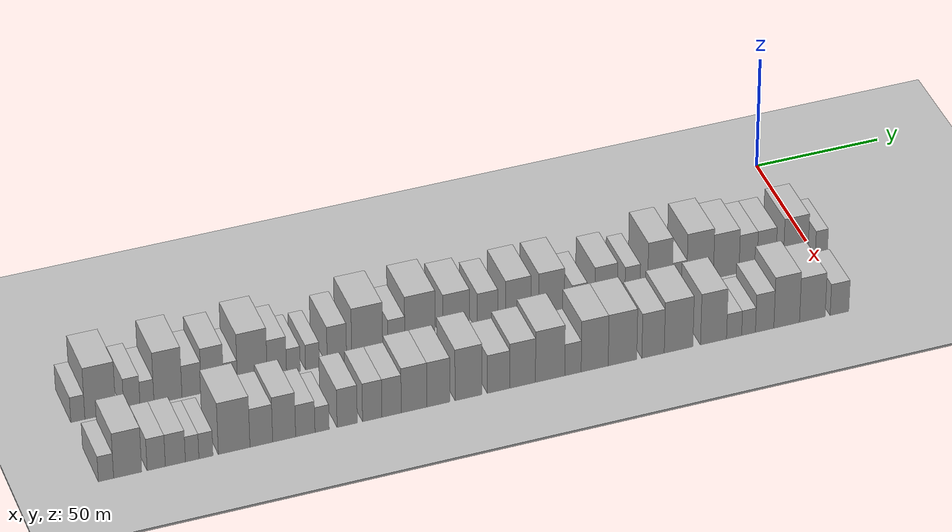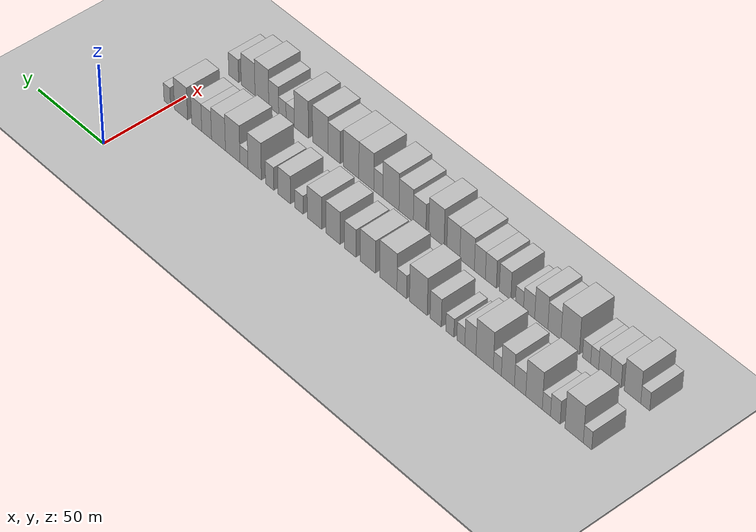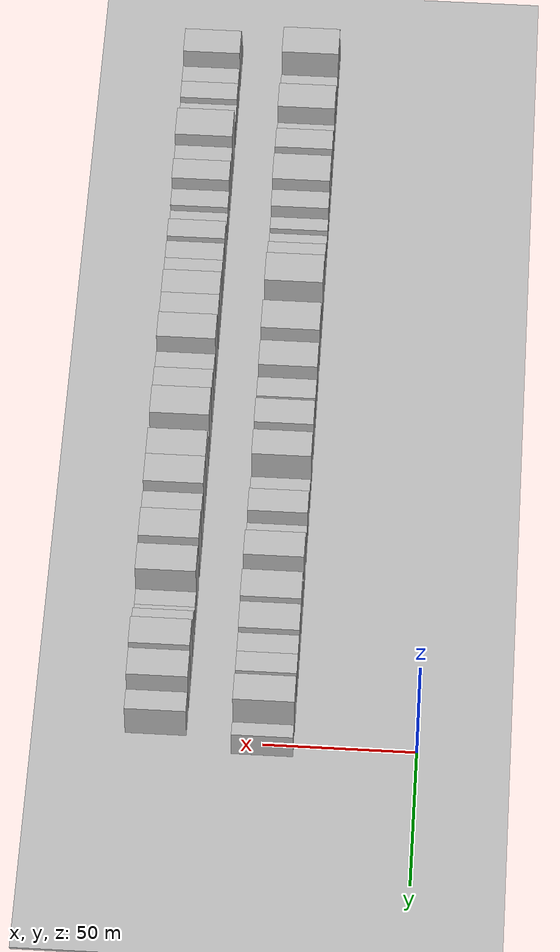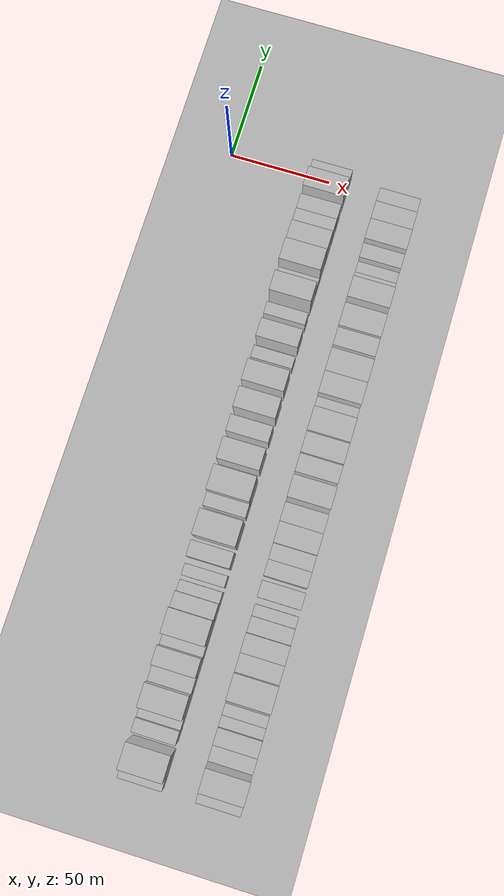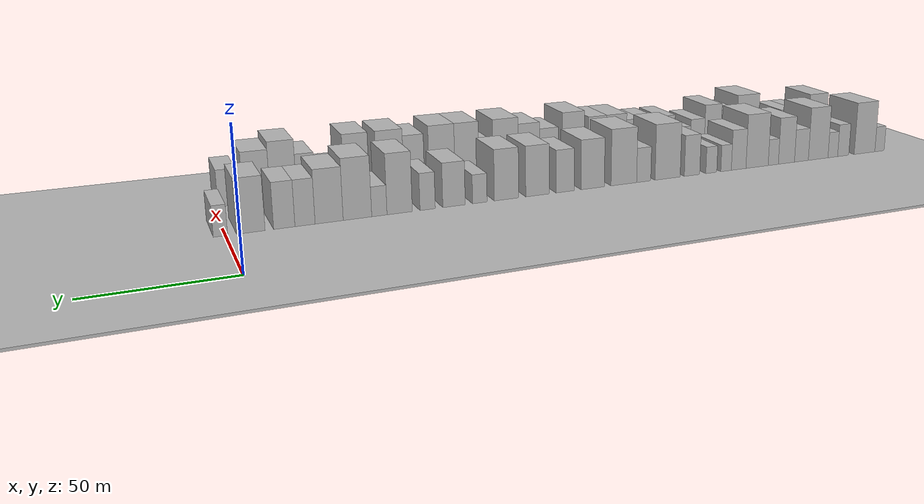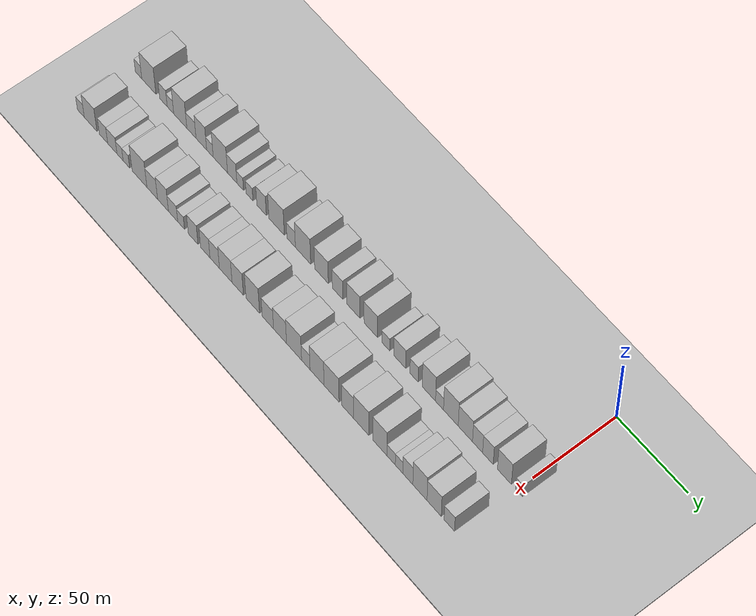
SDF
<sdf version="1.6">
 <world name="default">
  <include><name>ground_plane_1</name><uri>model://HANNAS_ground_plane</uri></include>
  <include>
   <name>ground_plane_2</name>
   <uri>model://HANNAS_ground_plane</uri>
   <pose>100 0 0  0 0 0</pose>
  </include>
  <model name="building_1">
   <static>1</static>
   <pose>50.0000 -287.3659 0 0.000000 0.000000 0.000000</pose>
   <link name="link">
    <pose>0 0 6.00 0 0 0</pose>
    <collision name="collision"><geometry><box><size>20.0000 5.2683 12.0000</size></box></geometry></collision>
    <visual name="visual">
     <cast_shadows>0</cast_shadows>
     <geometry><box><size>20.0000 5.2683 12.0000</size></box></geometry>
     <material>
      <script>
       <uri>model://HANNAS_wall/materials/scripts</uri>
       <uri>model://HANNAS_wall/materials/textures</uri>
       <name>vrc/HANNAS_wall</name>
      </script>
     </material>
    </visual>
   </link>
  </model>
  <model name="building_2">
   <static>1</static>
   <pose>50.0000 -278.9402 0 0.000000 0.000000 0.000000</pose>
   <link name="link">
    <pose>0 0 12.00 0 0 0</pose>
    <collision name="collision"><geometry><box><size>20.0000 11.5830 24.0000</size></box></geometry></collision>
    <visual name="visual">
     <cast_shadows>0</cast_shadows>
     <geometry><box><size>20.0000 11.5830 24.0000</size></box></geometry>
     <material>
      <script>
       <uri>model://HANNAS_wall/materials/scripts</uri>
       <uri>model://HANNAS_wall/materials/textures</uri>
       <name>vrc/HANNAS_wall</name>
      </script>
     </material>
    </visual>
   </link>
  </model>
  <model name="building_3">
   <static>1</static>
   <pose>50.0000 -267.0812 0 0.000000 0.000000 0.000000</pose>
   <link name="link">
    <pose>0 0 7.50 0 0 0</pose>
    <collision name="collision"><geometry><box><size>20.0000 6.1351 15.0000</size></box></geometry></collision>
    <visual name="visual">
     <cast_shadows>0</cast_shadows>
     <geometry><box><size>20.0000 6.1351 15.0000</size></box></geometry>
     <material>
      <script>
       <uri>model://HANNAS_wall/materials/scripts</uri>
       <uri>model://HANNAS_wall/materials/textures</uri>
       <name>vrc/HANNAS_wall</name>
      </script>
     </material>
    </visual>
   </link>
  </model>
  <model name="building_4">
   <static>1</static>
   <pose>50.0000 -261.3872 0 0.000000 0.000000 0.000000</pose>
   <link name="link">
    <pose>0 0 6.00 0 0 0</pose>
    <collision name="collision"><geometry><box><size>20.0000 5.2528 12.0000</size></box></geometry></collision>
    <visual name="visual">
     <cast_shadows>0</cast_shadows>
     <geometry><box><size>20.0000 5.2528 12.0000</size></box></geometry>
     <material>
      <script>
       <uri>model://HANNAS_wall/materials/scripts</uri>
       <uri>model://HANNAS_wall/materials/textures</uri>
       <name>vrc/HANNAS_wall</name>
      </script>
     </material>
    </visual>
   </link>
  </model>
  <model name="building_5">
   <static>1</static>
   <pose>50.0000 -253.4745 0 0.000000 0.000000 0.000000</pose>
   <link name="link">
    <pose>0 0 12.00 0 0 0</pose>
    <collision name="collision"><geometry><box><size>20.0000 10.5725 24.0000</size></box></geometry></collision>
    <visual name="visual">
     <cast_shadows>0</cast_shadows>
     <geometry><box><size>20.0000 10.5725 24.0000</size></box></geometry>
     <material>
      <script>
       <uri>model://HANNAS_wall/materials/scripts</uri>
       <uri>model://HANNAS_wall/materials/textures</uri>
       <name>vrc/HANNAS_wall</name>
      </script>
     </material>
    </visual>
   </link>
  </model>
  <model name="building_6">
   <static>1</static>
   <pose>50.0000 -244.5200 0 0.000000 0.000000 0.000000</pose>
   <link name="link">
    <pose>0 0 7.50 0 0 0</pose>
    <collision name="collision"><geometry><box><size>20.0000 7.3365 15.0000</size></box></geometry></collision>
    <visual name="visual">
     <cast_shadows>0</cast_shadows>
     <geometry><box><size>20.0000 7.3365 15.0000</size></box></geometry>
     <material>
      <script>
       <uri>model://HANNAS_wall/materials/scripts</uri>
       <uri>model://HANNAS_wall/materials/textures</uri>
       <name>vrc/HANNAS_wall</name>
      </script>
     </material>
    </visual>
   </link>
  </model>
  <model name="building_7">
   <static>1</static>
   <pose>50.0000 -236.6234 0 0.000000 0.000000 0.000000</pose>
   <link name="link">
    <pose>0 0 10.50 0 0 0</pose>
    <collision name="collision"><geometry><box><size>20.0000 8.4568 21.0000</size></box></geometry></collision>
    <visual name="visual">
     <cast_shadows>0</cast_shadows>
     <geometry><box><size>20.0000 8.4568 21.0000</size></box></geometry>
     <material>
      <script>
       <uri>model://HANNAS_wall/materials/scripts</uri>
       <uri>model://HANNAS_wall/materials/textures</uri>
       <name>vrc/HANNAS_wall</name>
      </script>
     </material>
    </visual>
   </link>
  </model>
  <model name="building_8">
   <static>1</static>
   <pose>50.0000 -229.7621 0 0.000000 0.000000 0.000000</pose>
   <link name="link">
    <pose>0 0 6.00 0 0 0</pose>
    <collision name="collision"><geometry><box><size>20.0000 5.2659 12.0000</size></box></geometry></collision>
    <visual name="visual">
     <cast_shadows>0</cast_shadows>
     <geometry><box><size>20.0000 5.2659 12.0000</size></box></geometry>
     <material>
      <script>
       <uri>model://HANNAS_wall/materials/scripts</uri>
       <uri>model://HANNAS_wall/materials/textures</uri>
       <name>vrc/HANNAS_wall</name>
      </script>
     </material>
    </visual>
   </link>
  </model>
  <model name="building_9">
   <static>1</static>
   <pose>50.0000 -221.4474 0 0.000000 0.000000 0.000000</pose>
   <link name="link">
    <pose>0 0 12.00 0 0 0</pose>
    <collision name="collision"><geometry><box><size>20.0000 11.3634 24.0000</size></box></geometry></collision>
    <visual name="visual">
     <cast_shadows>0</cast_shadows>
     <geometry><box><size>20.0000 11.3634 24.0000</size></box></geometry>
     <material>
      <script>
       <uri>model://HANNAS_wall/materials/scripts</uri>
       <uri>model://HANNAS_wall/materials/textures</uri>
       <name>vrc/HANNAS_wall</name>
      </script>
     </material>
    </visual>
   </link>
  </model>
  <model name="building_10">
   <static>1</static>
   <pose>50.0000 -212.0919 0 0.000000 0.000000 0.000000</pose>
   <link name="link">
    <pose>0 0 9.00 0 0 0</pose>
    <collision name="collision"><geometry><box><size>20.0000 7.3475 18.0000</size></box></geometry></collision>
    <visual name="visual">
     <cast_shadows>0</cast_shadows>
     <geometry><box><size>20.0000 7.3475 18.0000</size></box></geometry>
     <material>
      <script>
       <uri>model://HANNAS_wall/materials/scripts</uri>
       <uri>model://HANNAS_wall/materials/textures</uri>
       <name>vrc/HANNAS_wall</name>
      </script>
     </material>
    </visual>
   </link>
  </model>
  <model name="building_11">
   <static>1</static>
   <pose>50.0000 -205.8029 0 0.000000 0.000000 0.000000</pose>
   <link name="link">
    <pose>0 0 6.00 0 0 0</pose>
    <collision name="collision"><geometry><box><size>20.0000 5.2305 12.0000</size></box></geometry></collision>
    <visual name="visual">
     <cast_shadows>0</cast_shadows>
     <geometry><box><size>20.0000 5.2305 12.0000</size></box></geometry>
     <material>
      <script>
       <uri>model://HANNAS_wall/materials/scripts</uri>
       <uri>model://HANNAS_wall/materials/textures</uri>
       <name>vrc/HANNAS_wall</name>
      </script>
     </material>
    </visual>
   </link>
  </model>
  <model name="building_12">
   <static>1</static>
   <pose>50.0000 -198.5033 0 0.000000 0.000000 0.000000</pose>
   <link name="link">
    <pose>0 0 6.00 0 0 0</pose>
    <collision name="collision"><geometry><box><size>20.0000 5.3688 12.0000</size></box></geometry></collision>
    <visual name="visual">
     <cast_shadows>0</cast_shadows>
     <geometry><box><size>20.0000 5.3688 12.0000</size></box></geometry>
     <material>
      <script>
       <uri>model://HANNAS_wall/materials/scripts</uri>
       <uri>model://HANNAS_wall/materials/textures</uri>
       <name>vrc/HANNAS_wall</name>
      </script>
     </material>
    </visual>
   </link>
  </model>
  <model name="building_13">
   <static>1</static>
   <pose>50.0000 -189.1002 0 0.000000 0.000000 0.000000</pose>
   <link name="link">
    <pose>0 0 9.00 0 0 0</pose>
    <collision name="collision"><geometry><box><size>20.0000 7.4374 18.0000</size></box></geometry></collision>
    <visual name="visual">
     <cast_shadows>0</cast_shadows>
     <geometry><box><size>20.0000 7.4374 18.0000</size></box></geometry>
     <material>
      <script>
       <uri>model://HANNAS_wall/materials/scripts</uri>
       <uri>model://HANNAS_wall/materials/textures</uri>
       <name>vrc/HANNAS_wall</name>
      </script>
     </material>
    </visual>
   </link>
  </model>
  <model name="building_14">
   <static>1</static>
   <pose>50.0000 -177.4174 0 0.000000 0.000000 0.000000</pose>
   <link name="link">
    <pose>0 0 12.00 0 0 0</pose>
    <collision name="collision"><geometry><box><size>20.0000 11.9281 24.0000</size></box></geometry></collision>
    <visual name="visual">
     <cast_shadows>0</cast_shadows>
     <geometry><box><size>20.0000 11.9281 24.0000</size></box></geometry>
     <material>
      <script>
       <uri>model://HANNAS_wall/materials/scripts</uri>
       <uri>model://HANNAS_wall/materials/textures</uri>
       <name>vrc/HANNAS_wall</name>
      </script>
     </material>
    </visual>
   </link>
  </model>
  <model name="building_15">
   <static>1</static>
   <pose>50.0000 -166.1783 0 0.000000 0.000000 0.000000</pose>
   <link name="link">
    <pose>0 0 7.50 0 0 0</pose>
    <collision name="collision"><geometry><box><size>20.0000 6.5502 15.0000</size></box></geometry></collision>
    <visual name="visual">
     <cast_shadows>0</cast_shadows>
     <geometry><box><size>20.0000 6.5502 15.0000</size></box></geometry>
     <material>
      <script>
       <uri>model://HANNAS_wall/materials/scripts</uri>
       <uri>model://HANNAS_wall/materials/textures</uri>
       <name>vrc/HANNAS_wall</name>
      </script>
     </material>
    </visual>
   </link>
  </model>
  <model name="building_16">
   <static>1</static>
   <pose>50.0000 -157.0334 0 0.000000 0.000000 0.000000</pose>
   <link name="link">
    <pose>0 0 12.00 0 0 0</pose>
    <collision name="collision"><geometry><box><size>20.0000 11.7396 24.0000</size></box></geometry></collision>
    <visual name="visual">
     <cast_shadows>0</cast_shadows>
     <geometry><box><size>20.0000 11.7396 24.0000</size></box></geometry>
     <material>
      <script>
       <uri>model://HANNAS_wall/materials/scripts</uri>
       <uri>model://HANNAS_wall/materials/textures</uri>
       <name>vrc/HANNAS_wall</name>
      </script>
     </material>
    </visual>
   </link>
  </model>
  <model name="building_17">
   <static>1</static>
   <pose>50.0000 -142.9570 0 0.000000 0.000000 0.000000</pose>
   <link name="link">
    <pose>0 0 10.50 0 0 0</pose>
    <collision name="collision"><geometry><box><size>20.0000 10.4133 21.0000</size></box></geometry></collision>
    <visual name="visual">
     <cast_shadows>0</cast_shadows>
     <geometry><box><size>20.0000 10.4133 21.0000</size></box></geometry>
     <material>
      <script>
       <uri>model://HANNAS_wall/materials/scripts</uri>
       <uri>model://HANNAS_wall/materials/textures</uri>
       <name>vrc/HANNAS_wall</name>
      </script>
     </material>
    </visual>
   </link>
  </model>
  <model name="building_18">
   <static>1</static>
   <pose>50.0000 -130.7641 0 0.000000 0.000000 0.000000</pose>
   <link name="link">
    <pose>0 0 9.00 0 0 0</pose>
    <collision name="collision"><geometry><box><size>20.0000 7.9725 18.0000</size></box></geometry></collision>
    <visual name="visual">
     <cast_shadows>0</cast_shadows>
     <geometry><box><size>20.0000 7.9725 18.0000</size></box></geometry>
     <material>
      <script>
       <uri>model://HANNAS_wall/materials/scripts</uri>
       <uri>model://HANNAS_wall/materials/textures</uri>
       <name>vrc/HANNAS_wall</name>
      </script>
     </material>
    </visual>
   </link>
  </model>
  <model name="building_19">
   <static>1</static>
   <pose>50.0000 -118.8016 0 0.000000 0.000000 0.000000</pose>
   <link name="link">
    <pose>0 0 10.50 0 0 0</pose>
    <collision name="collision"><geometry><box><size>20.0000 9.9525 21.0000</size></box></geometry></collision>
    <visual name="visual">
     <cast_shadows>0</cast_shadows>
     <geometry><box><size>20.0000 9.9525 21.0000</size></box></geometry>
     <material>
      <script>
       <uri>model://HANNAS_wall/materials/scripts</uri>
       <uri>model://HANNAS_wall/materials/textures</uri>
       <name>vrc/HANNAS_wall</name>
      </script>
     </material>
    </visual>
   </link>
  </model>
  <model name="building_20">
   <static>1</static>
   <pose>50.0000 -105.7524 0 0.000000 0.000000 0.000000</pose>
   <link name="link">
    <pose>0 0 10.50 0 0 0</pose>
    <collision name="collision"><geometry><box><size>20.0000 10.1458 21.0000</size></box></geometry></collision>
    <visual name="visual">
     <cast_shadows>0</cast_shadows>
     <geometry><box><size>20.0000 10.1458 21.0000</size></box></geometry>
     <material>
      <script>
       <uri>model://HANNAS_wall/materials/scripts</uri>
       <uri>model://HANNAS_wall/materials/textures</uri>
       <name>vrc/HANNAS_wall</name>
      </script>
     </material>
    </visual>
   </link>
  </model>
  <model name="building_21">
   <static>1</static>
   <pose>50.0000 -94.7142 0 0.000000 0.000000 0.000000</pose>
   <link name="link">
    <pose>0 0 6.00 0 0 0</pose>
    <collision name="collision"><geometry><box><size>20.0000 5.9307 12.0000</size></box></geometry></collision>
    <visual name="visual">
     <cast_shadows>0</cast_shadows>
     <geometry><box><size>20.0000 5.9307 12.0000</size></box></geometry>
     <material>
      <script>
       <uri>model://HANNAS_wall/materials/scripts</uri>
       <uri>model://HANNAS_wall/materials/textures</uri>
       <name>vrc/HANNAS_wall</name>
      </script>
     </material>
    </visual>
   </link>
  </model>
  <model name="building_22">
   <static>1</static>
   <pose>50.0000 -84.2666 0 0.000000 0.000000 0.000000</pose>
   <link name="link">
    <pose>0 0 9.00 0 0 0</pose>
    <collision name="collision"><geometry><box><size>20.0000 8.9644 18.0000</size></box></geometry></collision>
    <visual name="visual">
     <cast_shadows>0</cast_shadows>
     <geometry><box><size>20.0000 8.9644 18.0000</size></box></geometry>
     <material>
      <script>
       <uri>model://HANNAS_wall/materials/scripts</uri>
       <uri>model://HANNAS_wall/materials/textures</uri>
       <name>vrc/HANNAS_wall</name>
      </script>
     </material>
    </visual>
   </link>
  </model>
  <model name="building_23">
   <static>1</static>
   <pose>50.0000 -73.7801 0 0.000000 0.000000 0.000000</pose>
   <link name="link">
    <pose>0 0 7.50 0 0 0</pose>
    <collision name="collision"><geometry><box><size>20.0000 6.0086 15.0000</size></box></geometry></collision>
    <visual name="visual">
     <cast_shadows>0</cast_shadows>
     <geometry><box><size>20.0000 6.0086 15.0000</size></box></geometry>
     <material>
      <script>
       <uri>model://HANNAS_wall/materials/scripts</uri>
       <uri>model://HANNAS_wall/materials/textures</uri>
       <name>vrc/HANNAS_wall</name>
      </script>
     </material>
    </visual>
   </link>
  </model>
  <model name="building_24">
   <static>1</static>
   <pose>50.0000 -62.9027 0 0.000000 0.000000 0.000000</pose>
   <link name="link">
    <pose>0 0 12.00 0 0 0</pose>
    <collision name="collision"><geometry><box><size>20.0000 9.7461 24.0000</size></box></geometry></collision>
    <visual name="visual">
     <cast_shadows>0</cast_shadows>
     <geometry><box><size>20.0000 9.7461 24.0000</size></box></geometry>
     <material>
      <script>
       <uri>model://HANNAS_wall/materials/scripts</uri>
       <uri>model://HANNAS_wall/materials/textures</uri>
       <name>vrc/HANNAS_wall</name>
      </script>
     </material>
    </visual>
   </link>
  </model>
  <model name="building_25">
   <static>1</static>
   <pose>50.0000 -55.1246 0 0.000000 0.000000 0.000000</pose>
   <link name="link">
    <pose>0 0 6.00 0 0 0</pose>
    <collision name="collision"><geometry><box><size>20.0000 5.8101 12.0000</size></box></geometry></collision>
    <visual name="visual">
     <cast_shadows>0</cast_shadows>
     <geometry><box><size>20.0000 5.8101 12.0000</size></box></geometry>
     <material>
      <script>
       <uri>model://HANNAS_wall/materials/scripts</uri>
       <uri>model://HANNAS_wall/materials/textures</uri>
       <name>vrc/HANNAS_wall</name>
      </script>
     </material>
    </visual>
   </link>
  </model>
  <model name="building_26">
   <static>1</static>
   <pose>50.0000 -46.8918 0 0.000000 0.000000 0.000000</pose>
   <link name="link">
    <pose>0 0 12.00 0 0 0</pose>
    <collision name="collision"><geometry><box><size>20.0000 10.6555 24.0000</size></box></geometry></collision>
    <visual name="visual">
     <cast_shadows>0</cast_shadows>
     <geometry><box><size>20.0000 10.6555 24.0000</size></box></geometry>
     <material>
      <script>
       <uri>model://HANNAS_wall/materials/scripts</uri>
       <uri>model://HANNAS_wall/materials/textures</uri>
       <name>vrc/HANNAS_wall</name>
      </script>
     </material>
    </visual>
   </link>
  </model>
  <model name="building_27">
   <static>1</static>
   <pose>50.0000 -36.4208 0 0.000000 0.000000 0.000000</pose>
   <link name="link">
    <pose>0 0 10.50 0 0 0</pose>
    <collision name="collision"><geometry><box><size>20.0000 10.2866 21.0000</size></box></geometry></collision>
    <visual name="visual">
     <cast_shadows>0</cast_shadows>
     <geometry><box><size>20.0000 10.2866 21.0000</size></box></geometry>
     <material>
      <script>
       <uri>model://HANNAS_wall/materials/scripts</uri>
       <uri>model://HANNAS_wall/materials/textures</uri>
       <name>vrc/HANNAS_wall</name>
      </script>
     </material>
    </visual>
   </link>
  </model>
  <model name="building_28">
   <static>1</static>
   <pose>50.0000 -27.6538 0 0.000000 0.000000 0.000000</pose>
   <link name="link">
    <pose>0 0 9.00 0 0 0</pose>
    <collision name="collision"><geometry><box><size>20.0000 7.2474 18.0000</size></box></geometry></collision>
    <visual name="visual">
     <cast_shadows>0</cast_shadows>
     <geometry><box><size>20.0000 7.2474 18.0000</size></box></geometry>
     <material>
      <script>
       <uri>model://HANNAS_wall/materials/scripts</uri>
       <uri>model://HANNAS_wall/materials/textures</uri>
       <name>vrc/HANNAS_wall</name>
      </script>
     </material>
    </visual>
   </link>
  </model>
  <model name="building_29">
   <static>1</static>
   <pose>50.0000 -20.2524 0 0.000000 0.000000 0.000000</pose>
   <link name="link">
    <pose>0 0 9.00 0 0 0</pose>
    <collision name="collision"><geometry><box><size>20.0000 7.5553 18.0000</size></box></geometry></collision>
    <visual name="visual">
     <cast_shadows>0</cast_shadows>
     <geometry><box><size>20.0000 7.5553 18.0000</size></box></geometry>
     <material>
      <script>
       <uri>model://HANNAS_wall/materials/scripts</uri>
       <uri>model://HANNAS_wall/materials/textures</uri>
       <name>vrc/HANNAS_wall</name>
      </script>
     </material>
    </visual>
   </link>
  </model>
  <model name="building_30">
   <static>1</static>
   <pose>50.0000 -8.5156 0 0.000000 0.000000 0.000000</pose>
   <link name="link">
    <pose>0 0 10.50 0 0 0</pose>
    <collision name="collision"><geometry><box><size>20.0000 9.9183 21.0000</size></box></geometry></collision>
    <visual name="visual">
     <cast_shadows>0</cast_shadows>
     <geometry><box><size>20.0000 9.9183 21.0000</size></box></geometry>
     <material>
      <script>
       <uri>model://HANNAS_wall/materials/scripts</uri>
       <uri>model://HANNAS_wall/materials/textures</uri>
       <name>vrc/HANNAS_wall</name>
      </script>
     </material>
    </visual>
   </link>
  </model>
  <model name="building_31">
   <static>1</static>
   <pose>50.0000 1.8954 0 0.000000 0.000000 0.000000</pose>
   <link name="link">
    <pose>0 0 6.00 0 0 0</pose>
    <collision name="collision"><geometry><box><size>20.0000 4.9037 12.0000</size></box></geometry></collision>
    <visual name="visual">
     <cast_shadows>0</cast_shadows>
     <geometry><box><size>20.0000 4.9037 12.0000</size></box></geometry>
     <material>
      <script>
       <uri>model://HANNAS_wall/materials/scripts</uri>
       <uri>model://HANNAS_wall/materials/textures</uri>
       <name>vrc/HANNAS_wall</name>
      </script>
     </material>
    </visual>
   </link>
  </model>
  <model name="building_63">
   <static>1</static>
   <pose>85.0000 -287.1785 0 0.000000 0.000000 0.000000</pose>
   <link name="link">
    <pose>0 0 6.00 0 0 0</pose>
    <collision name="collision"><geometry><box><size>20.0000 5.6430 12.0000</size></box></geometry></collision>
    <visual name="visual">
     <cast_shadows>0</cast_shadows>
     <geometry><box><size>20.0000 5.6430 12.0000</size></box></geometry>
     <material>
      <script>
       <uri>model://HANNAS_wall/materials/scripts</uri>
       <uri>model://HANNAS_wall/materials/textures</uri>
       <name>vrc/HANNAS_wall</name>
      </script>
     </material>
    </visual>
   </link>
  </model>
  <model name="building_64">
   <static>1</static>
   <pose>85.0000 -279.1492 0 0.000000 0.000000 0.000000</pose>
   <link name="link">
    <pose>0 0 10.50 0 0 0</pose>
    <collision name="collision"><geometry><box><size>20.0000 10.4156 21.0000</size></box></geometry></collision>
    <visual name="visual">
     <cast_shadows>0</cast_shadows>
     <geometry><box><size>20.0000 10.4156 21.0000</size></box></geometry>
     <material>
      <script>
       <uri>model://HANNAS_wall/materials/scripts</uri>
       <uri>model://HANNAS_wall/materials/textures</uri>
       <name>vrc/HANNAS_wall</name>
      </script>
     </material>
    </visual>
   </link>
  </model>
  <model name="building_65">
   <static>1</static>
   <pose>85.0000 -268.5546 0 0.000000 0.000000 0.000000</pose>
   <link name="link">
    <pose>0 0 7.50 0 0 0</pose>
    <collision name="collision"><geometry><box><size>20.0000 6.7735 15.0000</size></box></geometry></collision>
    <visual name="visual">
     <cast_shadows>0</cast_shadows>
     <geometry><box><size>20.0000 6.7735 15.0000</size></box></geometry>
     <material>
      <script>
       <uri>model://HANNAS_wall/materials/scripts</uri>
       <uri>model://HANNAS_wall/materials/textures</uri>
       <name>vrc/HANNAS_wall</name>
      </script>
     </material>
    </visual>
   </link>
  </model>
  <model name="building_66">
   <static>1</static>
   <pose>85.0000 -261.4307 0 0.000000 0.000000 0.000000</pose>
   <link name="link">
    <pose>0 0 7.50 0 0 0</pose>
    <collision name="collision"><geometry><box><size>20.0000 7.4743 15.0000</size></box></geometry></collision>
    <visual name="visual">
     <cast_shadows>0</cast_shadows>
     <geometry><box><size>20.0000 7.4743 15.0000</size></box></geometry>
     <material>
      <script>
       <uri>model://HANNAS_wall/materials/scripts</uri>
       <uri>model://HANNAS_wall/materials/textures</uri>
       <name>vrc/HANNAS_wall</name>
      </script>
     </material>
    </visual>
   </link>
  </model>
  <model name="building_67">
   <static>1</static>
   <pose>85.0000 -255.1750 0 0.000000 0.000000 0.000000</pose>
   <link name="link">
    <pose>0 0 6.00 0 0 0</pose>
    <collision name="collision"><geometry><box><size>20.0000 5.0370 12.0000</size></box></geometry></collision>
    <visual name="visual">
     <cast_shadows>0</cast_shadows>
     <geometry><box><size>20.0000 5.0370 12.0000</size></box></geometry>
     <material>
      <script>
       <uri>model://HANNAS_wall/materials/scripts</uri>
       <uri>model://HANNAS_wall/materials/textures</uri>
       <name>vrc/HANNAS_wall</name>
      </script>
     </material>
    </visual>
   </link>
  </model>
  <model name="building_68">
   <static>1</static>
   <pose>85.0000 -250.0267 0 0.000000 0.000000 0.000000</pose>
   <link name="link">
    <pose>0 0 6.00 0 0 0</pose>
    <collision name="collision"><geometry><box><size>20.0000 5.2595 12.0000</size></box></geometry></collision>
    <visual name="visual">
     <cast_shadows>0</cast_shadows>
     <geometry><box><size>20.0000 5.2595 12.0000</size></box></geometry>
     <material>
      <script>
       <uri>model://HANNAS_wall/materials/scripts</uri>
       <uri>model://HANNAS_wall/materials/textures</uri>
       <name>vrc/HANNAS_wall</name>
      </script>
     </material>
    </visual>
   </link>
  </model>
  <model name="building_69">
   <static>1</static>
   <pose>85.0000 -239.4775 0 0.000000 0.000000 0.000000</pose>
   <link name="link">
    <pose>0 0 12.00 0 0 0</pose>
    <collision name="collision"><geometry><box><size>20.0000 11.8390 24.0000</size></box></geometry></collision>
    <visual name="visual">
     <cast_shadows>0</cast_shadows>
     <geometry><box><size>20.0000 11.8390 24.0000</size></box></geometry>
     <material>
      <script>
       <uri>model://HANNAS_wall/materials/scripts</uri>
       <uri>model://HANNAS_wall/materials/textures</uri>
       <name>vrc/HANNAS_wall</name>
      </script>
     </material>
    </visual>
   </link>
  </model>
  <model name="building_70">
   <static>1</static>
   <pose>85.0000 -229.2885 0 0.000000 0.000000 0.000000</pose>
   <link name="link">
    <pose>0 0 9.00 0 0 0</pose>
    <collision name="collision"><geometry><box><size>20.0000 8.5390 18.0000</size></box></geometry></collision>
    <visual name="visual">
     <cast_shadows>0</cast_shadows>
     <geometry><box><size>20.0000 8.5390 18.0000</size></box></geometry>
     <material>
      <script>
       <uri>model://HANNAS_wall/materials/scripts</uri>
       <uri>model://HANNAS_wall/materials/textures</uri>
       <name>vrc/HANNAS_wall</name>
      </script>
     </material>
    </visual>
   </link>
  </model>
  <model name="building_71">
   <static>1</static>
   <pose>85.0000 -220.6977 0 0.000000 0.000000 0.000000</pose>
   <link name="link">
    <pose>0 0 10.50 0 0 0</pose>
    <collision name="collision"><geometry><box><size>20.0000 8.6425 21.0000</size></box></geometry></collision>
    <visual name="visual">
     <cast_shadows>0</cast_shadows>
     <geometry><box><size>20.0000 8.6425 21.0000</size></box></geometry>
     <material>
      <script>
       <uri>model://HANNAS_wall/materials/scripts</uri>
       <uri>model://HANNAS_wall/materials/textures</uri>
       <name>vrc/HANNAS_wall</name>
      </script>
     </material>
    </visual>
   </link>
  </model>
  <model name="building_72">
   <static>1</static>
   <pose>85.0000 -212.7192 0 0.000000 0.000000 0.000000</pose>
   <link name="link">
    <pose>0 0 7.50 0 0 0</pose>
    <collision name="collision"><geometry><box><size>20.0000 7.3145 15.0000</size></box></geometry></collision>
    <visual name="visual">
     <cast_shadows>0</cast_shadows>
     <geometry><box><size>20.0000 7.3145 15.0000</size></box></geometry>
     <material>
      <script>
       <uri>model://HANNAS_wall/materials/scripts</uri>
       <uri>model://HANNAS_wall/materials/textures</uri>
       <name>vrc/HANNAS_wall</name>
      </script>
     </material>
    </visual>
   </link>
  </model>
  <model name="building_73">
   <static>1</static>
   <pose>85.0000 -206.3841 0 0.000000 0.000000 0.000000</pose>
   <link name="link">
    <pose>0 0 6.00 0 0 0</pose>
    <collision name="collision"><geometry><box><size>20.0000 5.3559 12.0000</size></box></geometry></collision>
    <visual name="visual">
     <cast_shadows>0</cast_shadows>
     <geometry><box><size>20.0000 5.3559 12.0000</size></box></geometry>
     <material>
      <script>
       <uri>model://HANNAS_wall/materials/scripts</uri>
       <uri>model://HANNAS_wall/materials/textures</uri>
       <name>vrc/HANNAS_wall</name>
      </script>
     </material>
    </visual>
   </link>
  </model>
  <model name="building_74">
   <static>1</static>
   <pose>85.0000 -196.8793 0 0.000000 0.000000 0.000000</pose>
   <link name="link">
    <pose>0 0 9.00 0 0 0</pose>
    <collision name="collision"><geometry><box><size>20.0000 7.6538 18.0000</size></box></geometry></collision>
    <visual name="visual">
     <cast_shadows>0</cast_shadows>
     <geometry><box><size>20.0000 7.6538 18.0000</size></box></geometry>
     <material>
      <script>
       <uri>model://HANNAS_wall/materials/scripts</uri>
       <uri>model://HANNAS_wall/materials/textures</uri>
       <name>vrc/HANNAS_wall</name>
      </script>
     </material>
    </visual>
   </link>
  </model>
  <model name="building_75">
   <static>1</static>
   <pose>85.0000 -187.3704 0 0.000000 0.000000 0.000000</pose>
   <link name="link">
    <pose>0 0 9.00 0 0 0</pose>
    <collision name="collision"><geometry><box><size>20.0000 7.3639 18.0000</size></box></geometry></collision>
    <visual name="visual">
     <cast_shadows>0</cast_shadows>
     <geometry><box><size>20.0000 7.3639 18.0000</size></box></geometry>
     <material>
      <script>
       <uri>model://HANNAS_wall/materials/scripts</uri>
       <uri>model://HANNAS_wall/materials/textures</uri>
       <name>vrc/HANNAS_wall</name>
      </script>
     </material>
    </visual>
   </link>
  </model>
  <model name="building_76">
   <static>1</static>
   <pose>85.0000 -179.9994 0 0.000000 0.000000 0.000000</pose>
   <link name="link">
    <pose>0 0 9.00 0 0 0</pose>
    <collision name="collision"><geometry><box><size>20.0000 7.3781 18.0000</size></box></geometry></collision>
    <visual name="visual">
     <cast_shadows>0</cast_shadows>
     <geometry><box><size>20.0000 7.3781 18.0000</size></box></geometry>
     <material>
      <script>
       <uri>model://HANNAS_wall/materials/scripts</uri>
       <uri>model://HANNAS_wall/materials/textures</uri>
       <name>vrc/HANNAS_wall</name>
      </script>
     </material>
    </visual>
   </link>
  </model>
  <model name="building_77">
   <static>1</static>
   <pose>85.0000 -171.4181 0 0.000000 0.000000 0.000000</pose>
   <link name="link">
    <pose>0 0 10.50 0 0 0</pose>
    <collision name="collision"><geometry><box><size>20.0000 9.7846 21.0000</size></box></geometry></collision>
    <visual name="visual">
     <cast_shadows>0</cast_shadows>
     <geometry><box><size>20.0000 9.7846 21.0000</size></box></geometry>
     <material>
      <script>
       <uri>model://HANNAS_wall/materials/scripts</uri>
       <uri>model://HANNAS_wall/materials/textures</uri>
       <name>vrc/HANNAS_wall</name>
      </script>
     </material>
    </visual>
   </link>
  </model>
  <model name="building_78">
   <static>1</static>
   <pose>85.0000 -162.1418 0 0.000000 0.000000 0.000000</pose>
   <link name="link">
    <pose>0 0 10.50 0 0 0</pose>
    <collision name="collision"><geometry><box><size>20.0000 8.7679 21.0000</size></box></geometry></collision>
    <visual name="visual">
     <cast_shadows>0</cast_shadows>
     <geometry><box><size>20.0000 8.7679 21.0000</size></box></geometry>
     <material>
      <script>
       <uri>model://HANNAS_wall/materials/scripts</uri>
       <uri>model://HANNAS_wall/materials/textures</uri>
       <name>vrc/HANNAS_wall</name>
      </script>
     </material>
    </visual>
   </link>
  </model>
  <model name="building_79">
   <static>1</static>
   <pose>85.0000 -150.5645 0 0.000000 0.000000 0.000000</pose>
   <link name="link">
    <pose>0 0 12.00 0 0 0</pose>
    <collision name="collision"><geometry><box><size>20.0000 10.3867 24.0000</size></box></geometry></collision>
    <visual name="visual">
     <cast_shadows>0</cast_shadows>
     <geometry><box><size>20.0000 10.3867 24.0000</size></box></geometry>
     <material>
      <script>
       <uri>model://HANNAS_wall/materials/scripts</uri>
       <uri>model://HANNAS_wall/materials/textures</uri>
       <name>vrc/HANNAS_wall</name>
      </script>
     </material>
    </visual>
   </link>
  </model>
  <model name="building_80">
   <static>1</static>
   <pose>85.0000 -139.0347 0 0.000000 0.000000 0.000000</pose>
   <link name="link">
    <pose>0 0 9.00 0 0 0</pose>
    <collision name="collision"><geometry><box><size>20.0000 8.6728 18.0000</size></box></geometry></collision>
    <visual name="visual">
     <cast_shadows>0</cast_shadows>
     <geometry><box><size>20.0000 8.6728 18.0000</size></box></geometry>
     <material>
      <script>
       <uri>model://HANNAS_wall/materials/scripts</uri>
       <uri>model://HANNAS_wall/materials/textures</uri>
       <name>vrc/HANNAS_wall</name>
      </script>
     </material>
    </visual>
   </link>
  </model>
  <model name="building_81">
   <static>1</static>
   <pose>85.0000 -129.7623 0 0.000000 0.000000 0.000000</pose>
   <link name="link">
    <pose>0 0 10.50 0 0 0</pose>
    <collision name="collision"><geometry><box><size>20.0000 9.8722 21.0000</size></box></geometry></collision>
    <visual name="visual">
     <cast_shadows>0</cast_shadows>
     <geometry><box><size>20.0000 9.8722 21.0000</size></box></geometry>
     <material>
      <script>
       <uri>model://HANNAS_wall/materials/scripts</uri>
       <uri>model://HANNAS_wall/materials/textures</uri>
       <name>vrc/HANNAS_wall</name>
      </script>
     </material>
    </visual>
   </link>
  </model>
  <model name="building_82">
   <static>1</static>
   <pose>85.0000 -119.1501 0 0.000000 0.000000 0.000000</pose>
   <link name="link">
    <pose>0 0 12.00 0 0 0</pose>
    <collision name="collision"><geometry><box><size>20.0000 11.3521 24.0000</size></box></geometry></collision>
    <visual name="visual">
     <cast_shadows>0</cast_shadows>
     <geometry><box><size>20.0000 11.3521 24.0000</size></box></geometry>
     <material>
      <script>
       <uri>model://HANNAS_wall/materials/scripts</uri>
       <uri>model://HANNAS_wall/materials/textures</uri>
       <name>vrc/HANNAS_wall</name>
      </script>
     </material>
    </visual>
   </link>
  </model>
  <model name="building_83">
   <static>1</static>
   <pose>85.0000 -110.2947 0 0.000000 0.000000 0.000000</pose>
   <link name="link">
    <pose>0 0 7.50 0 0 0</pose>
    <collision name="collision"><geometry><box><size>20.0000 6.3588 15.0000</size></box></geometry></collision>
    <visual name="visual">
     <cast_shadows>0</cast_shadows>
     <geometry><box><size>20.0000 6.3588 15.0000</size></box></geometry>
     <material>
      <script>
       <uri>model://HANNAS_wall/materials/scripts</uri>
       <uri>model://HANNAS_wall/materials/textures</uri>
       <name>vrc/HANNAS_wall</name>
      </script>
     </material>
    </visual>
   </link>
  </model>
  <model name="building_84">
   <static>1</static>
   <pose>85.0000 -101.8480 0 0.000000 0.000000 0.000000</pose>
   <link name="link">
    <pose>0 0 12.00 0 0 0</pose>
    <collision name="collision"><geometry><box><size>20.0000 10.5346 24.0000</size></box></geometry></collision>
    <visual name="visual">
     <cast_shadows>0</cast_shadows>
     <geometry><box><size>20.0000 10.5346 24.0000</size></box></geometry>
     <material>
      <script>
       <uri>model://HANNAS_wall/materials/scripts</uri>
       <uri>model://HANNAS_wall/materials/textures</uri>
       <name>vrc/HANNAS_wall</name>
      </script>
     </material>
    </visual>
   </link>
  </model>
  <model name="building_85">
   <static>1</static>
   <pose>85.0000 -91.0212 0 0.000000 0.000000 0.000000</pose>
   <link name="link">
    <pose>0 0 12.00 0 0 0</pose>
    <collision name="collision"><geometry><box><size>20.0000 11.1191 24.0000</size></box></geometry></collision>
    <visual name="visual">
     <cast_shadows>0</cast_shadows>
     <geometry><box><size>20.0000 11.1191 24.0000</size></box></geometry>
     <material>
      <script>
       <uri>model://HANNAS_wall/materials/scripts</uri>
       <uri>model://HANNAS_wall/materials/textures</uri>
       <name>vrc/HANNAS_wall</name>
      </script>
     </material>
    </visual>
   </link>
  </model>
  <model name="building_86">
   <static>1</static>
   <pose>85.0000 -79.0819 0 0.000000 0.000000 0.000000</pose>
   <link name="link">
    <pose>0 0 10.50 0 0 0</pose>
    <collision name="collision"><geometry><box><size>20.0000 8.7594 21.0000</size></box></geometry></collision>
    <visual name="visual">
     <cast_shadows>0</cast_shadows>
     <geometry><box><size>20.0000 8.7594 21.0000</size></box></geometry>
     <material>
      <script>
       <uri>model://HANNAS_wall/materials/scripts</uri>
       <uri>model://HANNAS_wall/materials/textures</uri>
       <name>vrc/HANNAS_wall</name>
      </script>
     </material>
    </visual>
   </link>
  </model>
  <model name="building_87">
   <static>1</static>
   <pose>85.0000 -69.0846 0 0.000000 0.000000 0.000000</pose>
   <link name="link">
    <pose>0 0 12.00 0 0 0</pose>
    <collision name="collision"><geometry><box><size>20.0000 11.2352 24.0000</size></box></geometry></collision>
    <visual name="visual">
     <cast_shadows>0</cast_shadows>
     <geometry><box><size>20.0000 11.2352 24.0000</size></box></geometry>
     <material>
      <script>
       <uri>model://HANNAS_wall/materials/scripts</uri>
       <uri>model://HANNAS_wall/materials/textures</uri>
       <name>vrc/HANNAS_wall</name>
      </script>
     </material>
    </visual>
   </link>
  </model>
  <model name="building_88">
   <static>1</static>
   <pose>85.0000 -55.3323 0 0.000000 0.000000 0.000000</pose>
   <link name="link">
    <pose>0 0 12.00 0 0 0</pose>
    <collision name="collision"><geometry><box><size>20.0000 10.2693 24.0000</size></box></geometry></collision>
    <visual name="visual">
     <cast_shadows>0</cast_shadows>
     <geometry><box><size>20.0000 10.2693 24.0000</size></box></geometry>
     <material>
      <script>
       <uri>model://HANNAS_wall/materials/scripts</uri>
       <uri>model://HANNAS_wall/materials/textures</uri>
       <name>vrc/HANNAS_wall</name>
      </script>
     </material>
    </visual>
   </link>
  </model>
  <model name="building_89">
   <static>1</static>
   <pose>85.0000 -47.2056 0 0.000000 0.000000 0.000000</pose>
   <link name="link">
    <pose>0 0 6.00 0 0 0</pose>
    <collision name="collision"><geometry><box><size>20.0000 5.9842 12.0000</size></box></geometry></collision>
    <visual name="visual">
     <cast_shadows>0</cast_shadows>
     <geometry><box><size>20.0000 5.9842 12.0000</size></box></geometry>
     <material>
      <script>
       <uri>model://HANNAS_wall/materials/scripts</uri>
       <uri>model://HANNAS_wall/materials/textures</uri>
       <name>vrc/HANNAS_wall</name>
      </script>
     </material>
    </visual>
   </link>
  </model>
  <model name="building_90">
   <static>1</static>
   <pose>85.0000 -41.4918 0 0.000000 0.000000 0.000000</pose>
   <link name="link">
    <pose>0 0 6.00 0 0 0</pose>
    <collision name="collision"><geometry><box><size>20.0000 5.4434 12.0000</size></box></geometry></collision>
    <visual name="visual">
     <cast_shadows>0</cast_shadows>
     <geometry><box><size>20.0000 5.4434 12.0000</size></box></geometry>
     <material>
      <script>
       <uri>model://HANNAS_wall/materials/scripts</uri>
       <uri>model://HANNAS_wall/materials/textures</uri>
       <name>vrc/HANNAS_wall</name>
      </script>
     </material>
    </visual>
   </link>
  </model>
  <model name="building_91">
   <static>1</static>
   <pose>85.0000 -35.1251 0 0.000000 0.000000 0.000000</pose>
   <link name="link">
    <pose>0 0 9.00 0 0 0</pose>
    <collision name="collision"><geometry><box><size>20.0000 7.2901 18.0000</size></box></geometry></collision>
    <visual name="visual">
     <cast_shadows>0</cast_shadows>
     <geometry><box><size>20.0000 7.2901 18.0000</size></box></geometry>
     <material>
      <script>
       <uri>model://HANNAS_wall/materials/scripts</uri>
       <uri>model://HANNAS_wall/materials/textures</uri>
       <name>vrc/HANNAS_wall</name>
      </script>
     </material>
    </visual>
   </link>
  </model>
  <model name="building_92">
   <static>1</static>
   <pose>85.0000 -26.3903 0 0.000000 0.000000 0.000000</pose>
   <link name="link">
    <pose>0 0 12.00 0 0 0</pose>
    <collision name="collision"><geometry><box><size>20.0000 10.1794 24.0000</size></box></geometry></collision>
    <visual name="visual">
     <cast_shadows>0</cast_shadows>
     <geometry><box><size>20.0000 10.1794 24.0000</size></box></geometry>
     <material>
      <script>
       <uri>model://HANNAS_wall/materials/scripts</uri>
       <uri>model://HANNAS_wall/materials/textures</uri>
       <name>vrc/HANNAS_wall</name>
      </script>
     </material>
    </visual>
   </link>
  </model>
  <model name="building_93">
   <static>1</static>
   <pose>85.0000 -16.1994 0 0.000000 0.000000 0.000000</pose>
   <link name="link">
    <pose>0 0 10.50 0 0 0</pose>
    <collision name="collision"><geometry><box><size>20.0000 10.2025 21.0000</size></box></geometry></collision>
    <visual name="visual">
     <cast_shadows>0</cast_shadows>
     <geometry><box><size>20.0000 10.2025 21.0000</size></box></geometry>
     <material>
      <script>
       <uri>model://HANNAS_wall/materials/scripts</uri>
       <uri>model://HANNAS_wall/materials/textures</uri>
       <name>vrc/HANNAS_wall</name>
      </script>
     </material>
    </visual>
   </link>
  </model>
  <model name="building_94">
   <static>1</static>
   <pose>85.0000 -5.3818 0 0.000000 0.000000 0.000000</pose>
   <link name="link">
    <pose>0 0 7.50 0 0 0</pose>
    <collision name="collision"><geometry><box><size>20.0000 7.4328 15.0000</size></box></geometry></collision>
    <visual name="visual">
     <cast_shadows>0</cast_shadows>
     <geometry><box><size>20.0000 7.4328 15.0000</size></box></geometry>
     <material>
      <script>
       <uri>model://HANNAS_wall/materials/scripts</uri>
       <uri>model://HANNAS_wall/materials/textures</uri>
       <name>vrc/HANNAS_wall</name>
      </script>
     </material>
    </visual>
   </link>
  </model>
 </world>
</sdf>
